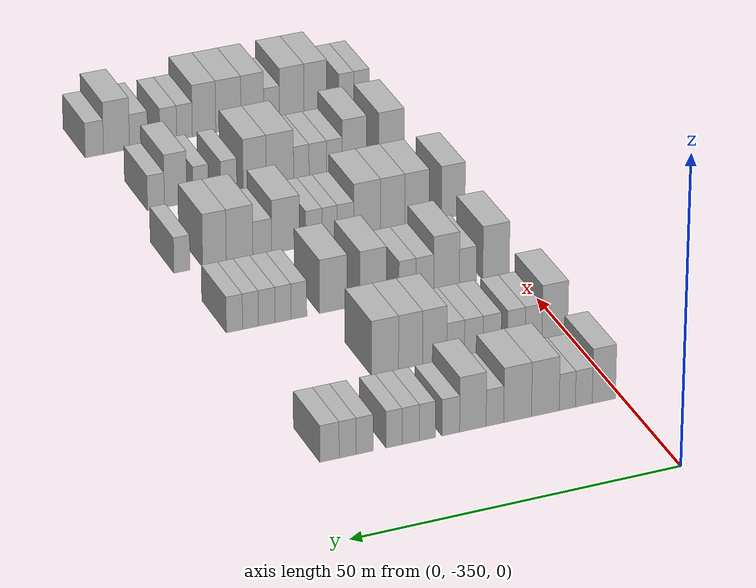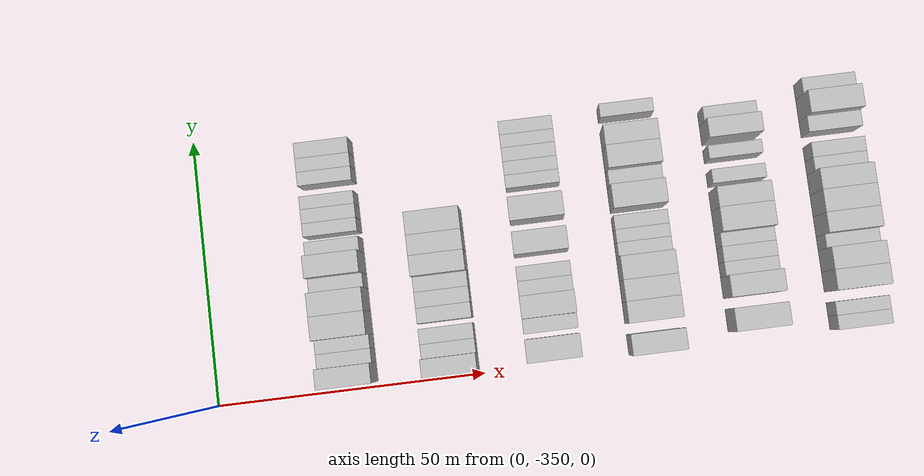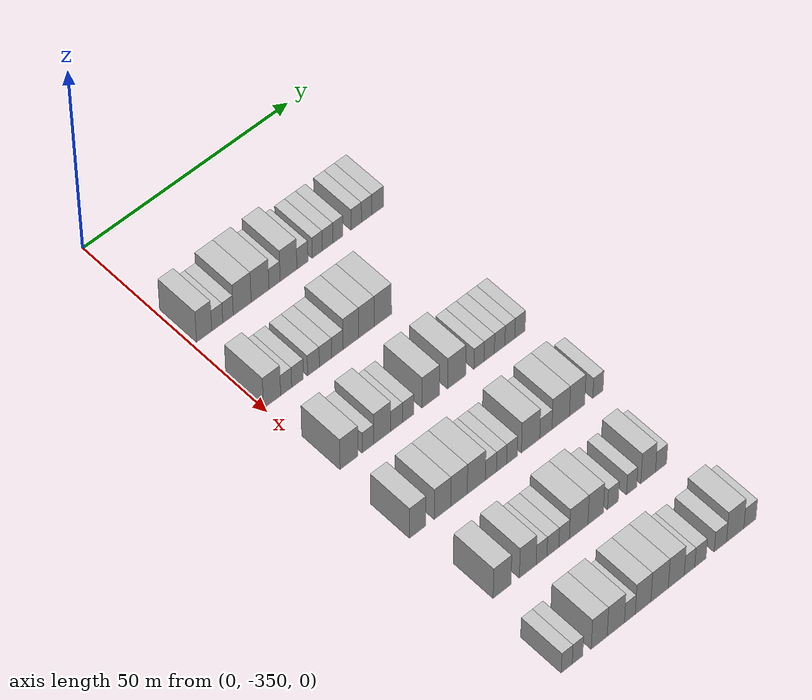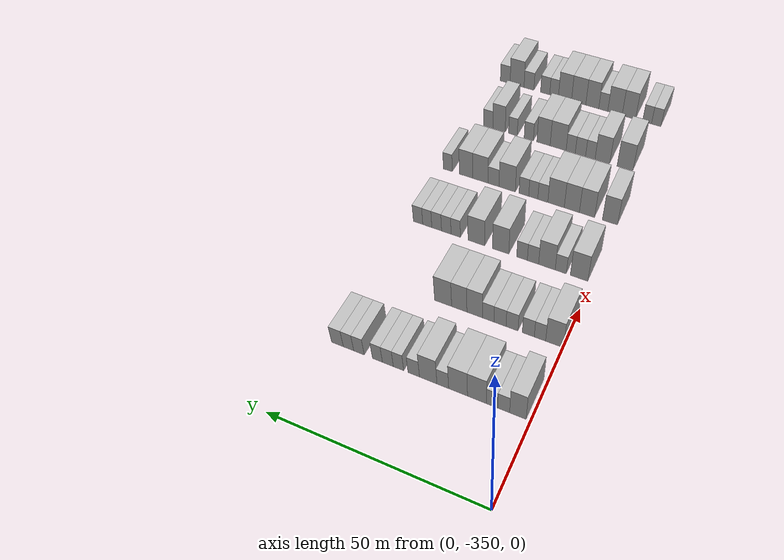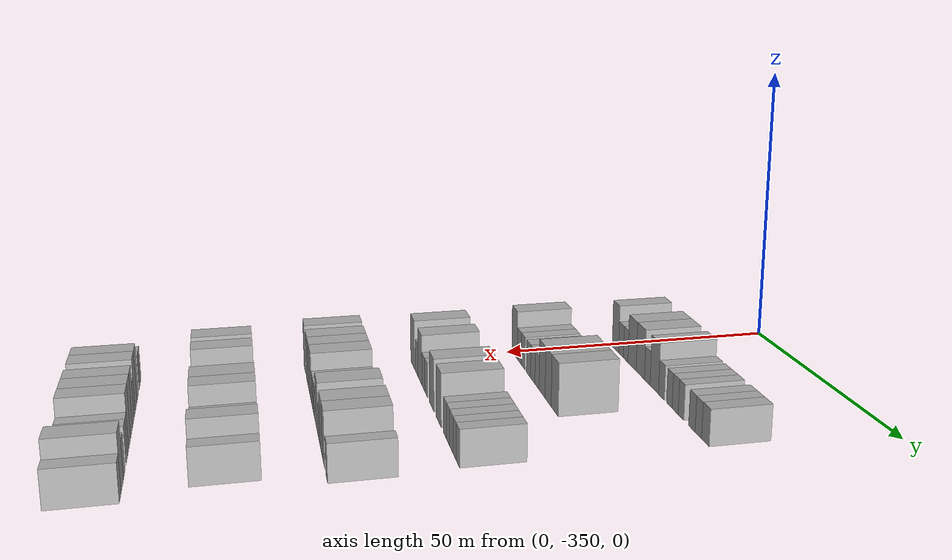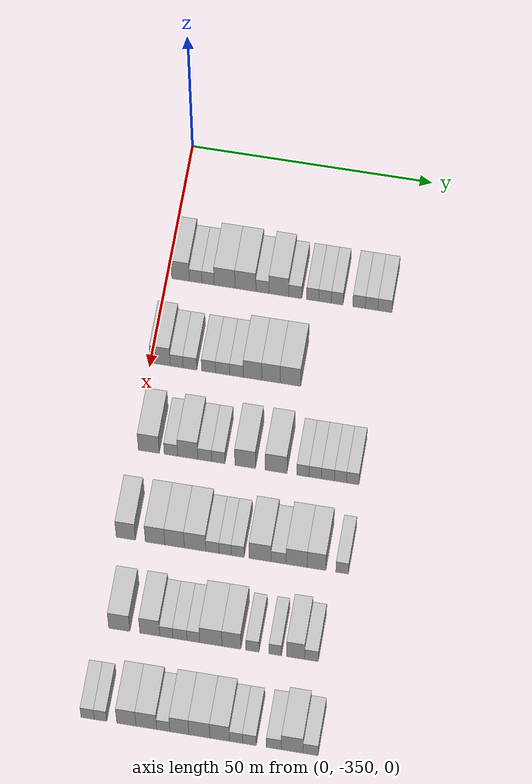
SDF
<sdf version="1.6">
 <world name="default">
  <model name="building_1">
   <static>1</static>
   <pose>25.0000 -347.1879 0 0.000000 0.000000 0.000000</pose>
   <link name="link">
    <pose>0 0 4.50 0 0 0</pose>
    <collision name="collision"><geometry><box><size>10.0000 3.6242 9.0000</size></box></geometry></collision>
    <visual name="visual">
     <cast_shadows>0</cast_shadows>
     <geometry><box><size>10.0000 3.6242 9.0000</size></box></geometry>
     <material>
      <script>
       <uri>model://HANNAS_wall/materials/scripts</uri>
       <uri>model://HANNAS_wall/materials/textures</uri>
       <name>vrc/HANNAS_wall</name>
      </script>
     </material>
    </visual>
   </link>
  </model>
  <model name="building_2">
   <static>1</static>
   <pose>25.0000 -344.0635 0 0.000000 0.000000 0.000000</pose>
   <link name="link">
    <pose>0 0 3.00 0 0 0</pose>
    <collision name="collision"><geometry><box><size>10.0000 2.6245 6.0000</size></box></geometry></collision>
    <visual name="visual">
     <cast_shadows>0</cast_shadows>
     <geometry><box><size>10.0000 2.6245 6.0000</size></box></geometry>
     <material>
      <script>
       <uri>model://HANNAS_wall/materials/scripts</uri>
       <uri>model://HANNAS_wall/materials/textures</uri>
       <name>vrc/HANNAS_wall</name>
      </script>
     </material>
    </visual>
   </link>
  </model>
  <model name="building_3">
   <static>1</static>
   <pose>25.0000 -341.4922 0 0.000000 0.000000 0.000000</pose>
   <link name="link">
    <pose>0 0 3.00 0 0 0</pose>
    <collision name="collision"><geometry><box><size>10.0000 2.5183 6.0000</size></box></geometry></collision>
    <visual name="visual">
     <cast_shadows>0</cast_shadows>
     <geometry><box><size>10.0000 2.5183 6.0000</size></box></geometry>
     <material>
      <script>
       <uri>model://HANNAS_wall/materials/scripts</uri>
       <uri>model://HANNAS_wall/materials/textures</uri>
       <name>vrc/HANNAS_wall</name>
      </script>
     </material>
    </visual>
   </link>
  </model>
  <model name="building_4">
   <static>1</static>
   <pose>25.0000 -338.0847 0 0.000000 0.000000 0.000000</pose>
   <link name="link">
    <pose>0 0 4.50 0 0 0</pose>
    <collision name="collision"><geometry><box><size>10.0000 4.2967 9.0000</size></box></geometry></collision>
    <visual name="visual">
     <cast_shadows>0</cast_shadows>
     <geometry><box><size>10.0000 4.2967 9.0000</size></box></geometry>
     <material>
      <script>
       <uri>model://HANNAS_wall/materials/scripts</uri>
       <uri>model://HANNAS_wall/materials/textures</uri>
       <name>vrc/HANNAS_wall</name>
      </script>
     </material>
    </visual>
   </link>
  </model>
  <model name="building_5">
   <static>1</static>
   <pose>25.0000 -333.7913 0 0.000000 0.000000 0.000000</pose>
   <link name="link">
    <pose>0 0 4.50 0 0 0</pose>
    <collision name="collision"><geometry><box><size>10.0000 4.2900 9.0000</size></box></geometry></collision>
    <visual name="visual">
     <cast_shadows>0</cast_shadows>
     <geometry><box><size>10.0000 4.2900 9.0000</size></box></geometry>
     <material>
      <script>
       <uri>model://HANNAS_wall/materials/scripts</uri>
       <uri>model://HANNAS_wall/materials/textures</uri>
       <name>vrc/HANNAS_wall</name>
      </script>
     </material>
    </visual>
   </link>
  </model>
  <model name="building_6">
   <static>1</static>
   <pose>25.0000 -330.2938 0 0.000000 0.000000 0.000000</pose>
   <link name="link">
    <pose>0 0 3.00 0 0 0</pose>
    <collision name="collision"><geometry><box><size>10.0000 2.7050 6.0000</size></box></geometry></collision>
    <visual name="visual">
     <cast_shadows>0</cast_shadows>
     <geometry><box><size>10.0000 2.7050 6.0000</size></box></geometry>
     <material>
      <script>
       <uri>model://HANNAS_wall/materials/scripts</uri>
       <uri>model://HANNAS_wall/materials/textures</uri>
       <name>vrc/HANNAS_wall</name>
      </script>
     </material>
    </visual>
   </link>
  </model>
  <model name="building_7">
   <static>1</static>
   <pose>25.0000 -326.9067 0 0.000000 0.000000 0.000000</pose>
   <link name="link">
    <pose>0 0 4.50 0 0 0</pose>
    <collision name="collision"><geometry><box><size>10.0000 4.0691 9.0000</size></box></geometry></collision>
    <visual name="visual">
     <cast_shadows>0</cast_shadows>
     <geometry><box><size>10.0000 4.0691 9.0000</size></box></geometry>
     <material>
      <script>
       <uri>model://HANNAS_wall/materials/scripts</uri>
       <uri>model://HANNAS_wall/materials/textures</uri>
       <name>vrc/HANNAS_wall</name>
      </script>
     </material>
    </visual>
   </link>
  </model>
  <model name="building_8">
   <static>1</static>
   <pose>25.0000 -323.5153 0 0.000000 0.000000 0.000000</pose>
   <link name="link">
    <pose>0 0 3.00 0 0 0</pose>
    <collision name="collision"><geometry><box><size>10.0000 2.7138 6.0000</size></box></geometry></collision>
    <visual name="visual">
     <cast_shadows>0</cast_shadows>
     <geometry><box><size>10.0000 2.7138 6.0000</size></box></geometry>
     <material>
      <script>
       <uri>model://HANNAS_wall/materials/scripts</uri>
       <uri>model://HANNAS_wall/materials/textures</uri>
       <name>vrc/HANNAS_wall</name>
      </script>
     </material>
    </visual>
   </link>
  </model>
  <model name="building_9">
   <static>1</static>
   <pose>25.0000 -319.9232 0 0.000000 0.000000 0.000000</pose>
   <link name="link">
    <pose>0 0 3.00 0 0 0</pose>
    <collision name="collision"><geometry><box><size>10.0000 2.4704 6.0000</size></box></geometry></collision>
    <visual name="visual">
     <cast_shadows>0</cast_shadows>
     <geometry><box><size>10.0000 2.4704 6.0000</size></box></geometry>
     <material>
      <script>
       <uri>model://HANNAS_wall/materials/scripts</uri>
       <uri>model://HANNAS_wall/materials/textures</uri>
       <name>vrc/HANNAS_wall</name>
      </script>
     </material>
    </visual>
   </link>
  </model>
  <model name="building_10">
   <static>1</static>
   <pose>25.0000 -317.3774 0 0.000000 0.000000 0.000000</pose>
   <link name="link">
    <pose>0 0 3.00 0 0 0</pose>
    <collision name="collision"><geometry><box><size>10.0000 2.6212 6.0000</size></box></geometry></collision>
    <visual name="visual">
     <cast_shadows>0</cast_shadows>
     <geometry><box><size>10.0000 2.6212 6.0000</size></box></geometry>
     <material>
      <script>
       <uri>model://HANNAS_wall/materials/scripts</uri>
       <uri>model://HANNAS_wall/materials/textures</uri>
       <name>vrc/HANNAS_wall</name>
      </script>
     </material>
    </visual>
   </link>
  </model>
  <model name="building_11">
   <static>1</static>
   <pose>25.0000 -314.8654 0 0.000000 0.000000 0.000000</pose>
   <link name="link">
    <pose>0 0 3.00 0 0 0</pose>
    <collision name="collision"><geometry><box><size>10.0000 2.4026 6.0000</size></box></geometry></collision>
    <visual name="visual">
     <cast_shadows>0</cast_shadows>
     <geometry><box><size>10.0000 2.4026 6.0000</size></box></geometry>
     <material>
      <script>
       <uri>model://HANNAS_wall/materials/scripts</uri>
       <uri>model://HANNAS_wall/materials/textures</uri>
       <name>vrc/HANNAS_wall</name>
      </script>
     </material>
    </visual>
   </link>
  </model>
  <model name="building_12">
   <static>1</static>
   <pose>25.0000 -310.3751 0 0.000000 0.000000 0.000000</pose>
   <link name="link">
    <pose>0 0 3.00 0 0 0</pose>
    <collision name="collision"><geometry><box><size>10.0000 2.5780 6.0000</size></box></geometry></collision>
    <visual name="visual">
     <cast_shadows>0</cast_shadows>
     <geometry><box><size>10.0000 2.5780 6.0000</size></box></geometry>
     <material>
      <script>
       <uri>model://HANNAS_wall/materials/scripts</uri>
       <uri>model://HANNAS_wall/materials/textures</uri>
       <name>vrc/HANNAS_wall</name>
      </script>
     </material>
    </visual>
   </link>
  </model>
  <model name="building_13">
   <static>1</static>
   <pose>25.0000 -307.8042 0 0.000000 0.000000 0.000000</pose>
   <link name="link">
    <pose>0 0 3.00 0 0 0</pose>
    <collision name="collision"><geometry><box><size>10.0000 2.5639 6.0000</size></box></geometry></collision>
    <visual name="visual">
     <cast_shadows>0</cast_shadows>
     <geometry><box><size>10.0000 2.5639 6.0000</size></box></geometry>
     <material>
      <script>
       <uri>model://HANNAS_wall/materials/scripts</uri>
       <uri>model://HANNAS_wall/materials/textures</uri>
       <name>vrc/HANNAS_wall</name>
      </script>
     </material>
    </visual>
   </link>
  </model>
  <model name="building_14">
   <static>1</static>
   <pose>25.0000 -305.0713 0 0.000000 0.000000 0.000000</pose>
   <link name="link">
    <pose>0 0 3.00 0 0 0</pose>
    <collision name="collision"><geometry><box><size>10.0000 2.9018 6.0000</size></box></geometry></collision>
    <visual name="visual">
     <cast_shadows>0</cast_shadows>
     <geometry><box><size>10.0000 2.9018 6.0000</size></box></geometry>
     <material>
      <script>
       <uri>model://HANNAS_wall/materials/scripts</uri>
       <uri>model://HANNAS_wall/materials/textures</uri>
       <name>vrc/HANNAS_wall</name>
      </script>
     </material>
    </visual>
   </link>
  </model>
  <model name="building_166">
   <static>1</static>
   <pose>44.0000 -347.9622 0 0.000000 0.000000 0.000000</pose>
   <link name="link">
    <pose>0 0 4.50 0 0 0</pose>
    <collision name="collision"><geometry><box><size>10.0000 4.0756 9.0000</size></box></geometry></collision>
    <visual name="visual">
     <cast_shadows>0</cast_shadows>
     <geometry><box><size>10.0000 4.0756 9.0000</size></box></geometry>
     <material>
      <script>
       <uri>model://HANNAS_wall/materials/scripts</uri>
       <uri>model://HANNAS_wall/materials/textures</uri>
       <name>vrc/HANNAS_wall</name>
      </script>
     </material>
    </visual>
   </link>
  </model>
  <model name="building_167">
   <static>1</static>
   <pose>44.0000 -344.6034 0 0.000000 0.000000 0.000000</pose>
   <link name="link">
    <pose>0 0 3.00 0 0 0</pose>
    <collision name="collision"><geometry><box><size>10.0000 2.6420 6.0000</size></box></geometry></collision>
    <visual name="visual">
     <cast_shadows>0</cast_shadows>
     <geometry><box><size>10.0000 2.6420 6.0000</size></box></geometry>
     <material>
      <script>
       <uri>model://HANNAS_wall/materials/scripts</uri>
       <uri>model://HANNAS_wall/materials/textures</uri>
       <name>vrc/HANNAS_wall</name>
      </script>
     </material>
    </visual>
   </link>
  </model>
  <model name="building_168">
   <static>1</static>
   <pose>44.0000 -341.8772 0 0.000000 0.000000 0.000000</pose>
   <link name="link">
    <pose>0 0 3.00 0 0 0</pose>
    <collision name="collision"><geometry><box><size>10.0000 2.8104 6.0000</size></box></geometry></collision>
    <visual name="visual">
     <cast_shadows>0</cast_shadows>
     <geometry><box><size>10.0000 2.8104 6.0000</size></box></geometry>
     <material>
      <script>
       <uri>model://HANNAS_wall/materials/scripts</uri>
       <uri>model://HANNAS_wall/materials/textures</uri>
       <name>vrc/HANNAS_wall</name>
      </script>
     </material>
    </visual>
   </link>
  </model>
  <model name="building_169">
   <static>1</static>
   <pose>44.0000 -338.0529 0 0.000000 0.000000 0.000000</pose>
   <link name="link">
    <pose>0 0 3.00 0 0 0</pose>
    <collision name="collision"><geometry><box><size>10.0000 2.8381 6.0000</size></box></geometry></collision>
    <visual name="visual">
     <cast_shadows>0</cast_shadows>
     <geometry><box><size>10.0000 2.8381 6.0000</size></box></geometry>
     <material>
      <script>
       <uri>model://HANNAS_wall/materials/scripts</uri>
       <uri>model://HANNAS_wall/materials/textures</uri>
       <name>vrc/HANNAS_wall</name>
      </script>
     </material>
    </visual>
   </link>
  </model>
  <model name="building_170">
   <static>1</static>
   <pose>44.0000 -335.1756 0 0.000000 0.000000 0.000000</pose>
   <link name="link">
    <pose>0 0 3.00 0 0 0</pose>
    <collision name="collision"><geometry><box><size>10.0000 2.9165 6.0000</size></box></geometry></collision>
    <visual name="visual">
     <cast_shadows>0</cast_shadows>
     <geometry><box><size>10.0000 2.9165 6.0000</size></box></geometry>
     <material>
      <script>
       <uri>model://HANNAS_wall/materials/scripts</uri>
       <uri>model://HANNAS_wall/materials/textures</uri>
       <name>vrc/HANNAS_wall</name>
      </script>
     </material>
    </visual>
   </link>
  </model>
  <model name="building_171">
   <static>1</static>
   <pose>44.0000 -332.3271 0 0.000000 0.000000 0.000000</pose>
   <link name="link">
    <pose>0 0 3.00 0 0 0</pose>
    <collision name="collision"><geometry><box><size>10.0000 2.7805 6.0000</size></box></geometry></collision>
    <visual name="visual">
     <cast_shadows>0</cast_shadows>
     <geometry><box><size>10.0000 2.7805 6.0000</size></box></geometry>
     <material>
      <script>
       <uri>model://HANNAS_wall/materials/scripts</uri>
       <uri>model://HANNAS_wall/materials/textures</uri>
       <name>vrc/HANNAS_wall</name>
      </script>
     </material>
    </visual>
   </link>
  </model>
  <model name="building_172">
   <static>1</static>
   <pose>44.0000 -329.0518 0 0.000000 0.000000 0.000000</pose>
   <link name="link">
    <pose>0 0 4.50 0 0 0</pose>
    <collision name="collision"><geometry><box><size>10.0000 3.7700 9.0000</size></box></geometry></collision>
    <visual name="visual">
     <cast_shadows>0</cast_shadows>
     <geometry><box><size>10.0000 3.7700 9.0000</size></box></geometry>
     <material>
      <script>
       <uri>model://HANNAS_wall/materials/scripts</uri>
       <uri>model://HANNAS_wall/materials/textures</uri>
       <name>vrc/HANNAS_wall</name>
      </script>
     </material>
    </visual>
   </link>
  </model>
  <model name="building_173">
   <static>1</static>
   <pose>44.0000 -325.2895 0 0.000000 0.000000 0.000000</pose>
   <link name="link">
    <pose>0 0 4.50 0 0 0</pose>
    <collision name="collision"><geometry><box><size>10.0000 3.7545 9.0000</size></box></geometry></collision>
    <visual name="visual">
     <cast_shadows>0</cast_shadows>
     <geometry><box><size>10.0000 3.7545 9.0000</size></box></geometry>
     <material>
      <script>
       <uri>model://HANNAS_wall/materials/scripts</uri>
       <uri>model://HANNAS_wall/materials/textures</uri>
       <name>vrc/HANNAS_wall</name>
      </script>
     </material>
    </visual>
   </link>
  </model>
  <model name="building_174">
   <static>1</static>
   <pose>44.0000 -321.3037 0 0.000000 0.000000 0.000000</pose>
   <link name="link">
    <pose>0 0 4.50 0 0 0</pose>
    <collision name="collision"><geometry><box><size>10.0000 4.2172 9.0000</size></box></geometry></collision>
    <visual name="visual">
     <cast_shadows>0</cast_shadows>
     <geometry><box><size>10.0000 4.2172 9.0000</size></box></geometry>
     <material>
      <script>
       <uri>model://HANNAS_wall/materials/scripts</uri>
       <uri>model://HANNAS_wall/materials/textures</uri>
       <name>vrc/HANNAS_wall</name>
      </script>
     </material>
    </visual>
   </link>
  </model>
  <model name="building_333">
   <static>1</static>
   <pose>63.0000 -346.8686 0 0.000000 0.000000 0.000000</pose>
   <link name="link">
    <pose>0 0 4.50 0 0 0</pose>
    <collision name="collision"><geometry><box><size>10.0000 4.2628 9.0000</size></box></geometry></collision>
    <visual name="visual">
     <cast_shadows>0</cast_shadows>
     <geometry><box><size>10.0000 4.2628 9.0000</size></box></geometry>
     <material>
      <script>
       <uri>model://HANNAS_wall/materials/scripts</uri>
       <uri>model://HANNAS_wall/materials/textures</uri>
       <name>vrc/HANNAS_wall</name>
      </script>
     </material>
    </visual>
   </link>
  </model>
  <model name="building_334">
   <static>1</static>
   <pose>63.0000 -342.3698 0 0.000000 0.000000 0.000000</pose>
   <link name="link">
    <pose>0 0 3.00 0 0 0</pose>
    <collision name="collision"><geometry><box><size>10.0000 2.7348 6.0000</size></box></geometry></collision>
    <visual name="visual">
     <cast_shadows>0</cast_shadows>
     <geometry><box><size>10.0000 2.7348 6.0000</size></box></geometry>
     <material>
      <script>
       <uri>model://HANNAS_wall/materials/scripts</uri>
       <uri>model://HANNAS_wall/materials/textures</uri>
       <name>vrc/HANNAS_wall</name>
      </script>
     </material>
    </visual>
   </link>
  </model>
  <model name="building_335">
   <static>1</static>
   <pose>63.0000 -338.9448 0 0.000000 0.000000 0.000000</pose>
   <link name="link">
    <pose>0 0 4.50 0 0 0</pose>
    <collision name="collision"><geometry><box><size>10.0000 4.1153 9.0000</size></box></geometry></collision>
    <visual name="visual">
     <cast_shadows>0</cast_shadows>
     <geometry><box><size>10.0000 4.1153 9.0000</size></box></geometry>
     <material>
      <script>
       <uri>model://HANNAS_wall/materials/scripts</uri>
       <uri>model://HANNAS_wall/materials/textures</uri>
       <name>vrc/HANNAS_wall</name>
      </script>
     </material>
    </visual>
   </link>
  </model>
  <model name="building_336">
   <static>1</static>
   <pose>63.0000 -335.4769 0 0.000000 0.000000 0.000000</pose>
   <link name="link">
    <pose>0 0 3.00 0 0 0</pose>
    <collision name="collision"><geometry><box><size>10.0000 2.8205 6.0000</size></box></geometry></collision>
    <visual name="visual">
     <cast_shadows>0</cast_shadows>
     <geometry><box><size>10.0000 2.8205 6.0000</size></box></geometry>
     <material>
      <script>
       <uri>model://HANNAS_wall/materials/scripts</uri>
       <uri>model://HANNAS_wall/materials/textures</uri>
       <name>vrc/HANNAS_wall</name>
      </script>
     </material>
    </visual>
   </link>
  </model>
  <model name="building_337">
   <static>1</static>
   <pose>63.0000 -332.7199 0 0.000000 0.000000 0.000000</pose>
   <link name="link">
    <pose>0 0 3.00 0 0 0</pose>
    <collision name="collision"><geometry><box><size>10.0000 2.6935 6.0000</size></box></geometry></collision>
    <visual name="visual">
     <cast_shadows>0</cast_shadows>
     <geometry><box><size>10.0000 2.6935 6.0000</size></box></geometry>
     <material>
      <script>
       <uri>model://HANNAS_wall/materials/scripts</uri>
       <uri>model://HANNAS_wall/materials/textures</uri>
       <name>vrc/HANNAS_wall</name>
      </script>
     </material>
    </visual>
   </link>
  </model>
  <model name="building_338">
   <static>1</static>
   <pose>63.0000 -327.2841 0 0.000000 0.000000 0.000000</pose>
   <link name="link">
    <pose>0 0 4.50 0 0 0</pose>
    <collision name="collision"><geometry><box><size>10.0000 4.1782 9.0000</size></box></geometry></collision>
    <visual name="visual">
     <cast_shadows>0</cast_shadows>
     <geometry><box><size>10.0000 4.1782 9.0000</size></box></geometry>
     <material>
      <script>
       <uri>model://HANNAS_wall/materials/scripts</uri>
       <uri>model://HANNAS_wall/materials/textures</uri>
       <name>vrc/HANNAS_wall</name>
      </script>
     </material>
    </visual>
   </link>
  </model>
  <model name="building_339">
   <static>1</static>
   <pose>63.0000 -321.0070 0 0.000000 0.000000 0.000000</pose>
   <link name="link">
    <pose>0 0 4.50 0 0 0</pose>
    <collision name="collision"><geometry><box><size>10.0000 4.3760 9.0000</size></box></geometry></collision>
    <visual name="visual">
     <cast_shadows>0</cast_shadows>
     <geometry><box><size>10.0000 4.3760 9.0000</size></box></geometry>
     <material>
      <script>
       <uri>model://HANNAS_wall/materials/scripts</uri>
       <uri>model://HANNAS_wall/materials/textures</uri>
       <name>vrc/HANNAS_wall</name>
      </script>
     </material>
    </visual>
   </link>
  </model>
  <model name="building_340">
   <static>1</static>
   <pose>63.0000 -315.5880 0 0.000000 0.000000 0.000000</pose>
   <link name="link">
    <pose>0 0 3.00 0 0 0</pose>
    <collision name="collision"><geometry><box><size>10.0000 2.4620 6.0000</size></box></geometry></collision>
    <visual name="visual">
     <cast_shadows>0</cast_shadows>
     <geometry><box><size>10.0000 2.4620 6.0000</size></box></geometry>
     <material>
      <script>
       <uri>model://HANNAS_wall/materials/scripts</uri>
       <uri>model://HANNAS_wall/materials/textures</uri>
       <name>vrc/HANNAS_wall</name>
      </script>
     </material>
    </visual>
   </link>
  </model>
  <model name="building_341">
   <static>1</static>
   <pose>63.0000 -313.0838 0 0.000000 0.000000 0.000000</pose>
   <link name="link">
    <pose>0 0 3.00 0 0 0</pose>
    <collision name="collision"><geometry><box><size>10.0000 2.5463 6.0000</size></box></geometry></collision>
    <visual name="visual">
     <cast_shadows>0</cast_shadows>
     <geometry><box><size>10.0000 2.5463 6.0000</size></box></geometry>
     <material>
      <script>
       <uri>model://HANNAS_wall/materials/scripts</uri>
       <uri>model://HANNAS_wall/materials/textures</uri>
       <name>vrc/HANNAS_wall</name>
      </script>
     </material>
    </visual>
   </link>
  </model>
  <model name="building_342">
   <static>1</static>
   <pose>63.0000 -310.5114 0 0.000000 0.000000 0.000000</pose>
   <link name="link">
    <pose>0 0 3.00 0 0 0</pose>
    <collision name="collision"><geometry><box><size>10.0000 2.5984 6.0000</size></box></geometry></collision>
    <visual name="visual">
     <cast_shadows>0</cast_shadows>
     <geometry><box><size>10.0000 2.5984 6.0000</size></box></geometry>
     <material>
      <script>
       <uri>model://HANNAS_wall/materials/scripts</uri>
       <uri>model://HANNAS_wall/materials/textures</uri>
       <name>vrc/HANNAS_wall</name>
      </script>
     </material>
    </visual>
   </link>
  </model>
  <model name="building_343">
   <static>1</static>
   <pose>63.0000 -307.9889 0 0.000000 0.000000 0.000000</pose>
   <link name="link">
    <pose>0 0 3.00 0 0 0</pose>
    <collision name="collision"><geometry><box><size>10.0000 2.4465 6.0000</size></box></geometry></collision>
    <visual name="visual">
     <cast_shadows>0</cast_shadows>
     <geometry><box><size>10.0000 2.4465 6.0000</size></box></geometry>
     <material>
      <script>
       <uri>model://HANNAS_wall/materials/scripts</uri>
       <uri>model://HANNAS_wall/materials/textures</uri>
       <name>vrc/HANNAS_wall</name>
      </script>
     </material>
    </visual>
   </link>
  </model>
  <model name="building_344">
   <static>1</static>
   <pose>63.0000 -305.5019 0 0.000000 0.000000 0.000000</pose>
   <link name="link">
    <pose>0 0 3.00 0 0 0</pose>
    <collision name="collision"><geometry><box><size>10.0000 2.5276 6.0000</size></box></geometry></collision>
    <visual name="visual">
     <cast_shadows>0</cast_shadows>
     <geometry><box><size>10.0000 2.5276 6.0000</size></box></geometry>
     <material>
      <script>
       <uri>model://HANNAS_wall/materials/scripts</uri>
       <uri>model://HANNAS_wall/materials/textures</uri>
       <name>vrc/HANNAS_wall</name>
      </script>
     </material>
    </visual>
   </link>
  </model>
  <model name="building_521">
   <static>1</static>
   <pose>82.0000 -348.0713 0 0.000000 0.000000 0.000000</pose>
   <link name="link">
    <pose>0 0 4.50 0 0 0</pose>
    <collision name="collision"><geometry><box><size>10.0000 3.8573 9.0000</size></box></geometry></collision>
    <visual name="visual">
     <cast_shadows>0</cast_shadows>
     <geometry><box><size>10.0000 3.8573 9.0000</size></box></geometry>
     <material>
      <script>
       <uri>model://HANNAS_wall/materials/scripts</uri>
       <uri>model://HANNAS_wall/materials/textures</uri>
       <name>vrc/HANNAS_wall</name>
      </script>
     </material>
    </visual>
   </link>
  </model>
  <model name="building_522">
   <static>1</static>
   <pose>82.0000 -342.1744 0 0.000000 0.000000 0.000000</pose>
   <link name="link">
    <pose>0 0 4.50 0 0 0</pose>
    <collision name="collision"><geometry><box><size>10.0000 3.9365 9.0000</size></box></geometry></collision>
    <visual name="visual">
     <cast_shadows>0</cast_shadows>
     <geometry><box><size>10.0000 3.9365 9.0000</size></box></geometry>
     <material>
      <script>
       <uri>model://HANNAS_wall/materials/scripts</uri>
       <uri>model://HANNAS_wall/materials/textures</uri>
       <name>vrc/HANNAS_wall</name>
      </script>
     </material>
    </visual>
   </link>
  </model>
  <model name="building_523">
   <static>1</static>
   <pose>82.0000 -338.2371 0 0.000000 0.000000 0.000000</pose>
   <link name="link">
    <pose>0 0 4.50 0 0 0</pose>
    <collision name="collision"><geometry><box><size>10.0000 3.9381 9.0000</size></box></geometry></collision>
    <visual name="visual">
     <cast_shadows>0</cast_shadows>
     <geometry><box><size>10.0000 3.9381 9.0000</size></box></geometry>
     <material>
      <script>
       <uri>model://HANNAS_wall/materials/scripts</uri>
       <uri>model://HANNAS_wall/materials/textures</uri>
       <name>vrc/HANNAS_wall</name>
      </script>
     </material>
    </visual>
   </link>
  </model>
  <model name="building_524">
   <static>1</static>
   <pose>82.0000 -334.0992 0 0.000000 0.000000 0.000000</pose>
   <link name="link">
    <pose>0 0 4.50 0 0 0</pose>
    <collision name="collision"><geometry><box><size>10.0000 4.3378 9.0000</size></box></geometry></collision>
    <visual name="visual">
     <cast_shadows>0</cast_shadows>
     <geometry><box><size>10.0000 4.3378 9.0000</size></box></geometry>
     <material>
      <script>
       <uri>model://HANNAS_wall/materials/scripts</uri>
       <uri>model://HANNAS_wall/materials/textures</uri>
       <name>vrc/HANNAS_wall</name>
      </script>
     </material>
    </visual>
   </link>
  </model>
  <model name="building_525">
   <static>1</static>
   <pose>82.0000 -330.5990 0 0.000000 0.000000 0.000000</pose>
   <link name="link">
    <pose>0 0 3.00 0 0 0</pose>
    <collision name="collision"><geometry><box><size>10.0000 2.6625 6.0000</size></box></geometry></collision>
    <visual name="visual">
     <cast_shadows>0</cast_shadows>
     <geometry><box><size>10.0000 2.6625 6.0000</size></box></geometry>
     <material>
      <script>
       <uri>model://HANNAS_wall/materials/scripts</uri>
       <uri>model://HANNAS_wall/materials/textures</uri>
       <name>vrc/HANNAS_wall</name>
      </script>
     </material>
    </visual>
   </link>
  </model>
  <model name="building_526">
   <static>1</static>
   <pose>82.0000 -328.0485 0 0.000000 0.000000 0.000000</pose>
   <link name="link">
    <pose>0 0 3.00 0 0 0</pose>
    <collision name="collision"><geometry><box><size>10.0000 2.4385 6.0000</size></box></geometry></collision>
    <visual name="visual">
     <cast_shadows>0</cast_shadows>
     <geometry><box><size>10.0000 2.4385 6.0000</size></box></geometry>
     <material>
      <script>
       <uri>model://HANNAS_wall/materials/scripts</uri>
       <uri>model://HANNAS_wall/materials/textures</uri>
       <name>vrc/HANNAS_wall</name>
      </script>
     </material>
    </visual>
   </link>
  </model>
  <model name="building_527">
   <static>1</static>
   <pose>82.0000 -325.5320 0 0.000000 0.000000 0.000000</pose>
   <link name="link">
    <pose>0 0 3.00 0 0 0</pose>
    <collision name="collision"><geometry><box><size>10.0000 2.5946 6.0000</size></box></geometry></collision>
    <visual name="visual">
     <cast_shadows>0</cast_shadows>
     <geometry><box><size>10.0000 2.5946 6.0000</size></box></geometry>
     <material>
      <script>
       <uri>model://HANNAS_wall/materials/scripts</uri>
       <uri>model://HANNAS_wall/materials/textures</uri>
       <name>vrc/HANNAS_wall</name>
      </script>
     </material>
    </visual>
   </link>
  </model>
  <model name="building_528">
   <static>1</static>
   <pose>82.0000 -321.0066 0 0.000000 0.000000 0.000000</pose>
   <link name="link">
    <pose>0 0 4.50 0 0 0</pose>
    <collision name="collision"><geometry><box><size>10.0000 4.4562 9.0000</size></box></geometry></collision>
    <visual name="visual">
     <cast_shadows>0</cast_shadows>
     <geometry><box><size>10.0000 4.4562 9.0000</size></box></geometry>
     <material>
      <script>
       <uri>model://HANNAS_wall/materials/scripts</uri>
       <uri>model://HANNAS_wall/materials/textures</uri>
       <name>vrc/HANNAS_wall</name>
      </script>
     </material>
    </visual>
   </link>
  </model>
  <model name="building_529">
   <static>1</static>
   <pose>82.0000 -317.2801 0 0.000000 0.000000 0.000000</pose>
   <link name="link">
    <pose>0 0 3.00 0 0 0</pose>
    <collision name="collision"><geometry><box><size>10.0000 2.9967 6.0000</size></box></geometry></collision>
    <visual name="visual">
     <cast_shadows>0</cast_shadows>
     <geometry><box><size>10.0000 2.9967 6.0000</size></box></geometry>
     <material>
      <script>
       <uri>model://HANNAS_wall/materials/scripts</uri>
       <uri>model://HANNAS_wall/materials/textures</uri>
       <name>vrc/HANNAS_wall</name>
      </script>
     </material>
    </visual>
   </link>
  </model>
  <model name="building_530">
   <static>1</static>
   <pose>82.0000 -313.6624 0 0.000000 0.000000 0.000000</pose>
   <link name="link">
    <pose>0 0 4.50 0 0 0</pose>
    <collision name="collision"><geometry><box><size>10.0000 4.2388 9.0000</size></box></geometry></collision>
    <visual name="visual">
     <cast_shadows>0</cast_shadows>
     <geometry><box><size>10.0000 4.2388 9.0000</size></box></geometry>
     <material>
      <script>
       <uri>model://HANNAS_wall/materials/scripts</uri>
       <uri>model://HANNAS_wall/materials/textures</uri>
       <name>vrc/HANNAS_wall</name>
      </script>
     </material>
    </visual>
   </link>
  </model>
  <model name="building_531">
   <static>1</static>
   <pose>82.0000 -309.6660 0 0.000000 0.000000 0.000000</pose>
   <link name="link">
    <pose>0 0 4.50 0 0 0</pose>
    <collision name="collision"><geometry><box><size>10.0000 3.7540 9.0000</size></box></geometry></collision>
    <visual name="visual">
     <cast_shadows>0</cast_shadows>
     <geometry><box><size>10.0000 3.7540 9.0000</size></box></geometry>
     <material>
      <script>
       <uri>model://HANNAS_wall/materials/scripts</uri>
       <uri>model://HANNAS_wall/materials/textures</uri>
       <name>vrc/HANNAS_wall</name>
      </script>
     </material>
    </visual>
   </link>
  </model>
  <model name="building_532">
   <static>1</static>
   <pose>82.0000 -304.5221 0 0.000000 0.000000 0.000000</pose>
   <link name="link">
    <pose>0 0 3.00 0 0 0</pose>
    <collision name="collision"><geometry><box><size>10.0000 2.5338 6.0000</size></box></geometry></collision>
    <visual name="visual">
     <cast_shadows>0</cast_shadows>
     <geometry><box><size>10.0000 2.5338 6.0000</size></box></geometry>
     <material>
      <script>
       <uri>model://HANNAS_wall/materials/scripts</uri>
       <uri>model://HANNAS_wall/materials/textures</uri>
       <name>vrc/HANNAS_wall</name>
      </script>
     </material>
    </visual>
   </link>
  </model>
  <model name="building_702">
   <static>1</static>
   <pose>101.0000 -345.8877 0 0.000000 0.000000 0.000000</pose>
   <link name="link">
    <pose>0 0 4.50 0 0 0</pose>
    <collision name="collision"><geometry><box><size>10.0000 4.2246 9.0000</size></box></geometry></collision>
    <visual name="visual">
     <cast_shadows>0</cast_shadows>
     <geometry><box><size>10.0000 4.2246 9.0000</size></box></geometry>
     <material>
      <script>
       <uri>model://HANNAS_wall/materials/scripts</uri>
       <uri>model://HANNAS_wall/materials/textures</uri>
       <name>vrc/HANNAS_wall</name>
      </script>
     </material>
    </visual>
   </link>
  </model>
  <model name="building_703">
   <static>1</static>
   <pose>101.0000 -339.7837 0 0.000000 0.000000 0.000000</pose>
   <link name="link">
    <pose>0 0 4.50 0 0 0</pose>
    <collision name="collision"><geometry><box><size>10.0000 3.9834 9.0000</size></box></geometry></collision>
    <visual name="visual">
     <cast_shadows>0</cast_shadows>
     <geometry><box><size>10.0000 3.9834 9.0000</size></box></geometry>
     <material>
      <script>
       <uri>model://HANNAS_wall/materials/scripts</uri>
       <uri>model://HANNAS_wall/materials/textures</uri>
       <name>vrc/HANNAS_wall</name>
      </script>
     </material>
    </visual>
   </link>
  </model>
  <model name="building_704">
   <static>1</static>
   <pose>101.0000 -336.4939 0 0.000000 0.000000 0.000000</pose>
   <link name="link">
    <pose>0 0 3.00 0 0 0</pose>
    <collision name="collision"><geometry><box><size>10.0000 2.5962 6.0000</size></box></geometry></collision>
    <visual name="visual">
     <cast_shadows>0</cast_shadows>
     <geometry><box><size>10.0000 2.5962 6.0000</size></box></geometry>
     <material>
      <script>
       <uri>model://HANNAS_wall/materials/scripts</uri>
       <uri>model://HANNAS_wall/materials/textures</uri>
       <name>vrc/HANNAS_wall</name>
      </script>
     </material>
    </visual>
   </link>
  </model>
  <model name="building_705">
   <static>1</static>
   <pose>101.0000 -333.7739 0 0.000000 0.000000 0.000000</pose>
   <link name="link">
    <pose>0 0 3.00 0 0 0</pose>
    <collision name="collision"><geometry><box><size>10.0000 2.8438 6.0000</size></box></geometry></collision>
    <visual name="visual">
     <cast_shadows>0</cast_shadows>
     <geometry><box><size>10.0000 2.8438 6.0000</size></box></geometry>
     <material>
      <script>
       <uri>model://HANNAS_wall/materials/scripts</uri>
       <uri>model://HANNAS_wall/materials/textures</uri>
       <name>vrc/HANNAS_wall</name>
      </script>
     </material>
    </visual>
   </link>
  </model>
  <model name="building_706">
   <static>1</static>
   <pose>101.0000 -331.0873 0 0.000000 0.000000 0.000000</pose>
   <link name="link">
    <pose>0 0 3.00 0 0 0</pose>
    <collision name="collision"><geometry><box><size>10.0000 2.5295 6.0000</size></box></geometry></collision>
    <visual name="visual">
     <cast_shadows>0</cast_shadows>
     <geometry><box><size>10.0000 2.5295 6.0000</size></box></geometry>
     <material>
      <script>
       <uri>model://HANNAS_wall/materials/scripts</uri>
       <uri>model://HANNAS_wall/materials/textures</uri>
       <name>vrc/HANNAS_wall</name>
      </script>
     </material>
    </visual>
   </link>
  </model>
  <model name="building_707">
   <static>1</static>
   <pose>101.0000 -327.5819 0 0.000000 0.000000 0.000000</pose>
   <link name="link">
    <pose>0 0 4.50 0 0 0</pose>
    <collision name="collision"><geometry><box><size>10.0000 4.4812 9.0000</size></box></geometry></collision>
    <visual name="visual">
     <cast_shadows>0</cast_shadows>
     <geometry><box><size>10.0000 4.4812 9.0000</size></box></geometry>
     <material>
      <script>
       <uri>model://HANNAS_wall/materials/scripts</uri>
       <uri>model://HANNAS_wall/materials/textures</uri>
       <name>vrc/HANNAS_wall</name>
      </script>
     </material>
    </visual>
   </link>
  </model>
  <model name="building_708">
   <static>1</static>
   <pose>101.0000 -323.4672 0 0.000000 0.000000 0.000000</pose>
   <link name="link">
    <pose>0 0 4.50 0 0 0</pose>
    <collision name="collision"><geometry><box><size>10.0000 3.7483 9.0000</size></box></geometry></collision>
    <visual name="visual">
     <cast_shadows>0</cast_shadows>
     <geometry><box><size>10.0000 3.7483 9.0000</size></box></geometry>
     <material>
      <script>
       <uri>model://HANNAS_wall/materials/scripts</uri>
       <uri>model://HANNAS_wall/materials/textures</uri>
       <name>vrc/HANNAS_wall</name>
      </script>
     </material>
    </visual>
   </link>
  </model>
  <model name="building_709">
   <static>1</static>
   <pose>101.0000 -319.2819 0 0.000000 0.000000 0.000000</pose>
   <link name="link">
    <pose>0 0 3.00 0 0 0</pose>
    <collision name="collision"><geometry><box><size>10.0000 2.6221 6.0000</size></box></geometry></collision>
    <visual name="visual">
     <cast_shadows>0</cast_shadows>
     <geometry><box><size>10.0000 2.6221 6.0000</size></box></geometry>
     <material>
      <script>
       <uri>model://HANNAS_wall/materials/scripts</uri>
       <uri>model://HANNAS_wall/materials/textures</uri>
       <name>vrc/HANNAS_wall</name>
      </script>
     </material>
    </visual>
   </link>
  </model>
  <model name="building_710">
   <static>1</static>
   <pose>101.0000 -314.7309 0 0.000000 0.000000 0.000000</pose>
   <link name="link">
    <pose>0 0 3.00 0 0 0</pose>
    <collision name="collision"><geometry><box><size>10.0000 2.4800 6.0000</size></box></geometry></collision>
    <visual name="visual">
     <cast_shadows>0</cast_shadows>
     <geometry><box><size>10.0000 2.4800 6.0000</size></box></geometry>
     <material>
      <script>
       <uri>model://HANNAS_wall/materials/scripts</uri>
       <uri>model://HANNAS_wall/materials/textures</uri>
       <name>vrc/HANNAS_wall</name>
      </script>
     </material>
    </visual>
   </link>
  </model>
  <model name="building_711">
   <static>1</static>
   <pose>101.0000 -310.6875 0 0.000000 0.000000 0.000000</pose>
   <link name="link">
    <pose>0 0 4.50 0 0 0</pose>
    <collision name="collision"><geometry><box><size>10.0000 3.6066 9.0000</size></box></geometry></collision>
    <visual name="visual">
     <cast_shadows>0</cast_shadows>
     <geometry><box><size>10.0000 3.6066 9.0000</size></box></geometry>
     <material>
      <script>
       <uri>model://HANNAS_wall/materials/scripts</uri>
       <uri>model://HANNAS_wall/materials/textures</uri>
       <name>vrc/HANNAS_wall</name>
      </script>
     </material>
    </visual>
   </link>
  </model>
  <model name="building_712">
   <static>1</static>
   <pose>101.0000 -307.5233 0 0.000000 0.000000 0.000000</pose>
   <link name="link">
    <pose>0 0 3.00 0 0 0</pose>
    <collision name="collision"><geometry><box><size>10.0000 2.7218 6.0000</size></box></geometry></collision>
    <visual name="visual">
     <cast_shadows>0</cast_shadows>
     <geometry><box><size>10.0000 2.7218 6.0000</size></box></geometry>
     <material>
      <script>
       <uri>model://HANNAS_wall/materials/scripts</uri>
       <uri>model://HANNAS_wall/materials/textures</uri>
       <name>vrc/HANNAS_wall</name>
      </script>
     </material>
    </visual>
   </link>
  </model>
  <model name="building_883">
   <static>1</static>
   <pose>120.0000 -348.6885 0 0.000000 0.000000 0.000000</pose>
   <link name="link">
    <pose>0 0 3.00 0 0 0</pose>
    <collision name="collision"><geometry><box><size>10.0000 2.6231 6.0000</size></box></geometry></collision>
    <visual name="visual">
     <cast_shadows>0</cast_shadows>
     <geometry><box><size>10.0000 2.6231 6.0000</size></box></geometry>
     <material>
      <script>
       <uri>model://HANNAS_wall/materials/scripts</uri>
       <uri>model://HANNAS_wall/materials/textures</uri>
       <name>vrc/HANNAS_wall</name>
      </script>
     </material>
    </visual>
   </link>
  </model>
  <model name="building_884">
   <static>1</static>
   <pose>120.0000 -346.1332 0 0.000000 0.000000 0.000000</pose>
   <link name="link">
    <pose>0 0 3.00 0 0 0</pose>
    <collision name="collision"><geometry><box><size>10.0000 2.4875 6.0000</size></box></geometry></collision>
    <visual name="visual">
     <cast_shadows>0</cast_shadows>
     <geometry><box><size>10.0000 2.4875 6.0000</size></box></geometry>
     <material>
      <script>
       <uri>model://HANNAS_wall/materials/scripts</uri>
       <uri>model://HANNAS_wall/materials/textures</uri>
       <name>vrc/HANNAS_wall</name>
      </script>
     </material>
    </visual>
   </link>
  </model>
  <model name="building_885">
   <static>1</static>
   <pose>120.0000 -340.9934 0 0.000000 0.000000 0.000000</pose>
   <link name="link">
    <pose>0 0 4.50 0 0 0</pose>
    <collision name="collision"><geometry><box><size>10.0000 3.7921 9.0000</size></box></geometry></collision>
    <visual name="visual">
     <cast_shadows>0</cast_shadows>
     <geometry><box><size>10.0000 3.7921 9.0000</size></box></geometry>
     <material>
      <script>
       <uri>model://HANNAS_wall/materials/scripts</uri>
       <uri>model://HANNAS_wall/materials/textures</uri>
       <name>vrc/HANNAS_wall</name>
      </script>
     </material>
    </visual>
   </link>
  </model>
  <model name="building_886">
   <static>1</static>
   <pose>120.0000 -337.0448 0 0.000000 0.000000 0.000000</pose>
   <link name="link">
    <pose>0 0 4.50 0 0 0</pose>
    <collision name="collision"><geometry><box><size>10.0000 4.1051 9.0000</size></box></geometry></collision>
    <visual name="visual">
     <cast_shadows>0</cast_shadows>
     <geometry><box><size>10.0000 4.1051 9.0000</size></box></geometry>
     <material>
      <script>
       <uri>model://HANNAS_wall/materials/scripts</uri>
       <uri>model://HANNAS_wall/materials/textures</uri>
       <name>vrc/HANNAS_wall</name>
      </script>
     </material>
    </visual>
   </link>
  </model>
  <model name="building_887">
   <static>1</static>
   <pose>120.0000 -333.6907 0 0.000000 0.000000 0.000000</pose>
   <link name="link">
    <pose>0 0 3.00 0 0 0</pose>
    <collision name="collision"><geometry><box><size>10.0000 2.6031 6.0000</size></box></geometry></collision>
    <visual name="visual">
     <cast_shadows>0</cast_shadows>
     <geometry><box><size>10.0000 2.6031 6.0000</size></box></geometry>
     <material>
      <script>
       <uri>model://HANNAS_wall/materials/scripts</uri>
       <uri>model://HANNAS_wall/materials/textures</uri>
       <name>vrc/HANNAS_wall</name>
      </script>
     </material>
    </visual>
   </link>
  </model>
  <model name="building_888">
   <static>1</static>
   <pose>120.0000 -330.5091 0 0.000000 0.000000 0.000000</pose>
   <link name="link">
    <pose>0 0 4.50 0 0 0</pose>
    <collision name="collision"><geometry><box><size>10.0000 3.7601 9.0000</size></box></geometry></collision>
    <visual name="visual">
     <cast_shadows>0</cast_shadows>
     <geometry><box><size>10.0000 3.7601 9.0000</size></box></geometry>
     <material>
      <script>
       <uri>model://HANNAS_wall/materials/scripts</uri>
       <uri>model://HANNAS_wall/materials/textures</uri>
       <name>vrc/HANNAS_wall</name>
      </script>
     </material>
    </visual>
   </link>
  </model>
  <model name="building_889">
   <static>1</static>
   <pose>120.0000 -326.5350 0 0.000000 0.000000 0.000000</pose>
   <link name="link">
    <pose>0 0 4.50 0 0 0</pose>
    <collision name="collision"><geometry><box><size>10.0000 4.1881 9.0000</size></box></geometry></collision>
    <visual name="visual">
     <cast_shadows>0</cast_shadows>
     <geometry><box><size>10.0000 4.1881 9.0000</size></box></geometry>
     <material>
      <script>
       <uri>model://HANNAS_wall/materials/scripts</uri>
       <uri>model://HANNAS_wall/materials/textures</uri>
       <name>vrc/HANNAS_wall</name>
      </script>
     </material>
    </visual>
   </link>
  </model>
  <model name="building_890">
   <static>1</static>
   <pose>120.0000 -322.5106 0 0.000000 0.000000 0.000000</pose>
   <link name="link">
    <pose>0 0 4.50 0 0 0</pose>
    <collision name="collision"><geometry><box><size>10.0000 3.8607 9.0000</size></box></geometry></collision>
    <visual name="visual">
     <cast_shadows>0</cast_shadows>
     <geometry><box><size>10.0000 3.8607 9.0000</size></box></geometry>
     <material>
      <script>
       <uri>model://HANNAS_wall/materials/scripts</uri>
       <uri>model://HANNAS_wall/materials/textures</uri>
       <name>vrc/HANNAS_wall</name>
      </script>
     </material>
    </visual>
   </link>
  </model>
  <model name="building_891">
   <static>1</static>
   <pose>120.0000 -319.2969 0 0.000000 0.000000 0.000000</pose>
   <link name="link">
    <pose>0 0 3.00 0 0 0</pose>
    <collision name="collision"><geometry><box><size>10.0000 2.5667 6.0000</size></box></geometry></collision>
    <visual name="visual">
     <cast_shadows>0</cast_shadows>
     <geometry><box><size>10.0000 2.5667 6.0000</size></box></geometry>
     <material>
      <script>
       <uri>model://HANNAS_wall/materials/scripts</uri>
       <uri>model://HANNAS_wall/materials/textures</uri>
       <name>vrc/HANNAS_wall</name>
      </script>
     </material>
    </visual>
   </link>
  </model>
  <model name="building_892">
   <static>1</static>
   <pose>120.0000 -316.6408 0 0.000000 0.000000 0.000000</pose>
   <link name="link">
    <pose>0 0 3.00 0 0 0</pose>
    <collision name="collision"><geometry><box><size>10.0000 2.7455 6.0000</size></box></geometry></collision>
    <visual name="visual">
     <cast_shadows>0</cast_shadows>
     <geometry><box><size>10.0000 2.7455 6.0000</size></box></geometry>
     <material>
      <script>
       <uri>model://HANNAS_wall/materials/scripts</uri>
       <uri>model://HANNAS_wall/materials/textures</uri>
       <name>vrc/HANNAS_wall</name>
      </script>
     </material>
    </visual>
   </link>
  </model>
  <model name="building_893">
   <static>1</static>
   <pose>120.0000 -311.7720 0 0.000000 0.000000 0.000000</pose>
   <link name="link">
    <pose>0 0 3.00 0 0 0</pose>
    <collision name="collision"><geometry><box><size>10.0000 2.9920 6.0000</size></box></geometry></collision>
    <visual name="visual">
     <cast_shadows>0</cast_shadows>
     <geometry><box><size>10.0000 2.9920 6.0000</size></box></geometry>
     <material>
      <script>
       <uri>model://HANNAS_wall/materials/scripts</uri>
       <uri>model://HANNAS_wall/materials/textures</uri>
       <name>vrc/HANNAS_wall</name>
      </script>
     </material>
    </visual>
   </link>
  </model>
  <model name="building_894">
   <static>1</static>
   <pose>120.0000 -308.1539 0 0.000000 0.000000 0.000000</pose>
   <link name="link">
    <pose>0 0 4.50 0 0 0</pose>
    <collision name="collision"><geometry><box><size>10.0000 4.2441 9.0000</size></box></geometry></collision>
    <visual name="visual">
     <cast_shadows>0</cast_shadows>
     <geometry><box><size>10.0000 4.2441 9.0000</size></box></geometry>
     <material>
      <script>
       <uri>model://HANNAS_wall/materials/scripts</uri>
       <uri>model://HANNAS_wall/materials/textures</uri>
       <name>vrc/HANNAS_wall</name>
      </script>
     </material>
    </visual>
   </link>
  </model>
  <model name="building_895">
   <static>1</static>
   <pose>120.0000 -304.5455 0 0.000000 0.000000 0.000000</pose>
   <link name="link">
    <pose>0 0 3.00 0 0 0</pose>
    <collision name="collision"><geometry><box><size>10.0000 2.9727 6.0000</size></box></geometry></collision>
    <visual name="visual">
     <cast_shadows>0</cast_shadows>
     <geometry><box><size>10.0000 2.9727 6.0000</size></box></geometry>
     <material>
      <script>
       <uri>model://HANNAS_wall/materials/scripts</uri>
       <uri>model://HANNAS_wall/materials/textures</uri>
       <name>vrc/HANNAS_wall</name>
      </script>
     </material>
    </visual>
   </link>
  </model>
 </world>
</sdf>
